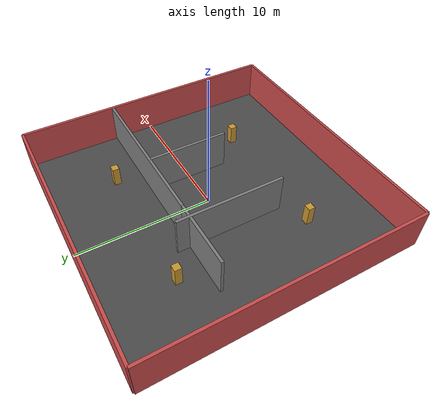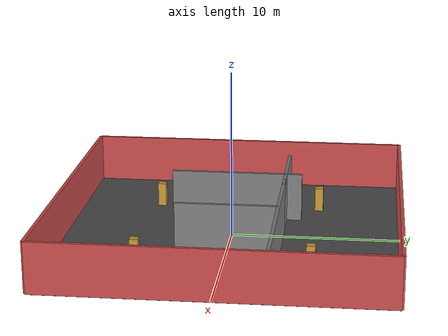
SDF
<?xml version="1.0"?>
<sdf version="1.6">
  <world name="warehouse">
    <include><uri>model://sun</uri></include>

    <model name="floor">
      <static>true</static>
      <link name="floor_link">
        <collision name="floor_collision">
          <geometry><box><size>20 20 0.1</size></box></geometry>
        </collision>
        <visual name="floor_visual">
          <geometry><box><size>20 20 0.1</size></box></geometry>
          <material><ambient>0.3 0.3 0.3 1</ambient></material>
        </visual>
      </link>
    </model>

    <model name="wall_north">
      <static>true</static>
      <pose>0 10 1.5 0 0 0</pose>
      <link name="link_north">
        <collision name="collision_north">
          <geometry><box><size>20 0.2 3</size></box></geometry>
        </collision>
        <visual name="visual_north">
          <geometry><box><size>20 0.2 3</size></box></geometry>
          <material><ambient>0.8 0.3 0.3 1</ambient></material>
        </visual>
      </link>
    </model>

    <model name="wall_south">
      <static>true</static>
      <pose>0 -10 1.5 0 0 0</pose>
      <link name="link_south">
        <collision name="collision_south">
          <geometry><box><size>20 0.2 3</size></box></geometry>
        </collision>
        <visual name="visual_south">
          <geometry><box><size>20 0.2 3</size></box></geometry>
          <material><ambient>0.8 0.3 0.3 1</ambient></material>
        </visual>
      </link>
    </model>

    <model name="wall_east">
      <static>true</static>
      <pose>10 0 1.5 0 0 0</pose>
      <link name="link_east">
        <collision name="collision_east">
          <geometry><box><size>0.2 20 3</size></box></geometry>
        </collision>
        <visual name="visual_east">
          <geometry><box><size>0.2 20 3</size></box></geometry>
          <material><ambient>0.8 0.3 0.3 1</ambient></material>
        </visual>
      </link>
    </model>

    <model name="wall_west">
      <static>true</static>
      <pose>-10 0 1.5 0 0 0</pose>
      <link name="link_west">
        <collision name="collision_west">
          <geometry><box><size>0.2 20 3</size></box></geometry>
        </collision>
        <visual name="visual_west">
          <geometry><box><size>0.2 20 3</size></box></geometry>
          <material><ambient>0.8 0.3 0.3 1</ambient></material>
        </visual>
      </link>
    </model>

    <!-- wall_h1 removed: was blocking robot spawn area at y=-3 -->
    <model name="wall_h2">
      <static>true</static>
      <pose>4 3 1.5 0 0 0</pose>
      <link name="link_h2">
        <collision name="collision_h2">
          <geometry><box><size>12 0.2 3</size></box></geometry>
        </collision>
        <visual name="visual_h2">
          <geometry><box><size>12 0.2 3</size></box></geometry>
          <material><ambient>0.5 0.5 0.5 1</ambient></material>
        </visual>
      </link>
    </model>

    <model name="wall_h3">
      <static>true</static>
      <pose>-4 3 1.5 0 0 0</pose>
      <link name="link_h3">
        <collision name="collision_h3">
          <geometry><box><size>6 0.2 3</size></box></geometry>
        </collision>
        <visual name="visual_h3">
          <geometry><box><size>6 0.2 3</size></box></geometry>
          <material><ambient>0.5 0.5 0.5 1</ambient></material>
        </visual>
      </link>
    </model>

    <model name="wall_v1">
      <static>true</static>
      <pose>3 0 1.5 0 0 0</pose>
      <link name="link_v1">
        <collision name="collision_v1">
          <geometry><box><size>0.2 6 3</size></box></geometry>
        </collision>
        <visual name="visual_v1">
          <geometry><box><size>0.2 6 3</size></box></geometry>
          <material><ambient>0.5 0.5 0.5 1</ambient></material>
        </visual>
      </link>
    </model>

    <model name="wall_v2">
      <static>true</static>
      <pose>-3 0 1.5 0 0 0</pose>
      <link name="link_v2">
        <collision name="collision_v2">
          <geometry><box><size>0.2 8 3</size></box></geometry>
        </collision>
        <visual name="visual_v2">
          <geometry><box><size>0.2 8 3</size></box></geometry>
          <material><ambient>0.5 0.5 0.5 1</ambient></material>
        </visual>
      </link>
    </model>

    <model name="pillar1">
      <static>true</static>
      <pose>5 5 0.75 0 0 0</pose>
      <link name="link_p1">
        <collision name="collision_p1">
          <geometry><box><size>0.5 0.5 1.5</size></box></geometry>
        </collision>
        <visual name="visual_p1">
          <geometry><box><size>0.5 0.5 1.5</size></box></geometry>
          <material><ambient>0.8 0.6 0.2 1</ambient></material>
        </visual>
      </link>
    </model>

    <model name="pillar2">
      <static>true</static>
      <pose>-5 5 0.75 0 0 0</pose>
      <link name="link_p2">
        <collision name="collision_p2">
          <geometry><box><size>0.5 0.5 1.5</size></box></geometry>
        </collision>
        <visual name="visual_p2">
          <geometry><box><size>0.5 0.5 1.5</size></box></geometry>
          <material><ambient>0.8 0.6 0.2 1</ambient></material>
        </visual>
      </link>
    </model>

    <model name="pillar3">
      <static>true</static>
      <pose>5 -5 0.75 0 0 0</pose>
      <link name="link_p3">
        <collision name="collision_p3">
          <geometry><box><size>0.5 0.5 1.5</size></box></geometry>
        </collision>
        <visual name="visual_p3">
          <geometry><box><size>0.5 0.5 1.5</size></box></geometry>
          <material><ambient>0.8 0.6 0.2 1</ambient></material>
        </visual>
      </link>
    </model>

    <model name="pillar4">
      <static>true</static>
      <pose>-5 -5 0.75 0 0 0</pose>
      <link name="link_p4">
        <collision name="collision_p4">
          <geometry><box><size>0.5 0.5 1.5</size></box></geometry>
        </collision>
        <visual name="visual_p4">
          <geometry><box><size>0.5 0.5 1.5</size></box></geometry>
          <material><ambient>0.8 0.6 0.2 1</ambient></material>
        </visual>
      </link>
    </model>

  </world>
</sdf>
